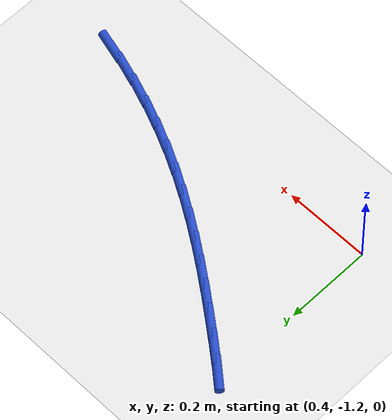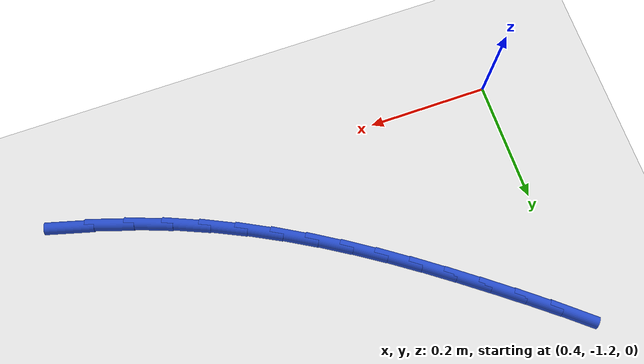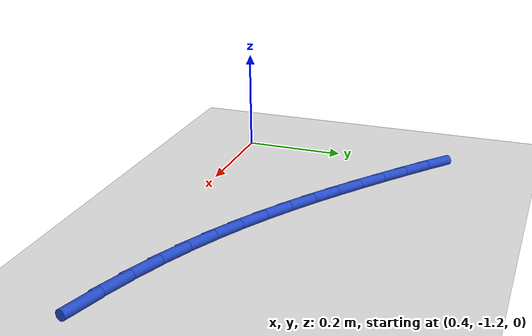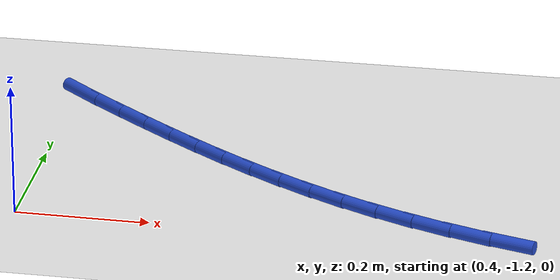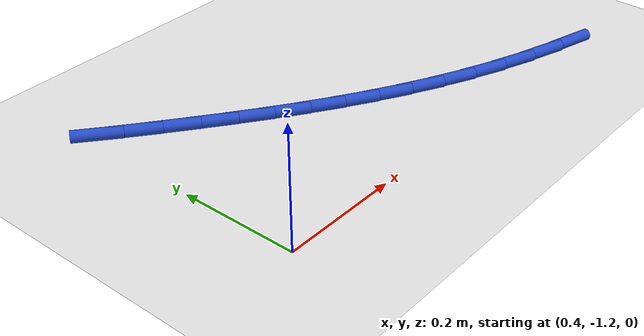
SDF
<sdf version="1.6">
 <world name="default">
  <model name="ground_plane">
   <static>1</static>
   <link name="link">
    <collision name="collision">
     <geometry><plane><normal>0 0 1</normal><size>100 100</size></plane></geometry>
     <surface><friction><ode><mu>100</mu><mu2>50</mu2></ode></friction></surface>
    </collision>
    <visual name="visual">
     <cast_shadows>0</cast_shadows>
     <geometry><plane><normal>0 0 1</normal><size>100 100</size></plane></geometry>
     <material>
      <script><uri>file://media/materials/scripts/gazebo.material</uri><name>Gazebo/WhiteGlow</name></script>
     </material>
    </visual>
   </link>
  </model>
  <model name="line">
   <link name="link_90">
    <pose>1.1222898866823372 -1.1924894793319176 0.01 0 1.57 -0.2703629640070567</pose>
    <collision name="collision">
     <geometry><cylinder><radius>0.01</radius><length>0.08</length></cylinder></geometry>
    </collision>
    <visual name="visual">
     <material>
      <script><name>Gazebo/Blue</name><uri>file://media/materials/scripts/gazebo.material</uri></script>
     </material>
     <geometry><cylinder><radius>0.01</radius><length>0.08</length></cylinder></geometry>
    </visual>
   </link>
   <link name="link_91">
    <pose>1.0600279932285928 -1.1752336615333652 0.01 0 1.57 -0.3158506569819308</pose>
    <collision name="collision">
     <geometry><cylinder><radius>0.01</radius><length>0.08</length></cylinder></geometry>
    </collision>
    <visual name="visual">
     <material>
      <script><name>Gazebo/Blue</name><uri>file://media/materials/scripts/gazebo.material</uri></script>
     </material>
     <geometry><cylinder><radius>0.01</radius><length>0.08</length></cylinder></geometry>
    </visual>
   </link>
   <link name="link_92">
    <pose>1.00040187743423 -1.1557484024380515 0.01 0 1.57 -0.36117264954080036</pose>
    <collision name="collision">
     <geometry><cylinder><radius>0.01</radius><length>0.08</length></cylinder></geometry>
    </collision>
    <visual name="visual">
     <material>
      <script><name>Gazebo/Blue</name><uri>file://media/materials/scripts/gazebo.material</uri></script>
     </material>
     <geometry><cylinder><radius>0.01</radius><length>0.08</length></cylinder></geometry>
    </visual>
   </link>
   <link name="link_93">
    <pose>0.9433966160611621 -1.13421510771858 0.01 0 1.57 -0.4054209004289169</pose>
    <collision name="collision">
     <geometry><cylinder><radius>0.01</radius><length>0.08</length></cylinder></geometry>
    </collision>
    <visual name="visual">
     <material>
      <script><name>Gazebo/Blue</name><uri>file://media/materials/scripts/gazebo.material</uri></script>
     </material>
     <geometry><cylinder><radius>0.01</radius><length>0.08</length></cylinder></geometry>
    </visual>
   </link>
   <link name="link_94">
    <pose>0.8887390739916196 -1.1107562071343913 0.01 0 1.57 -0.4478621539719772</pose>
    <collision name="collision">
     <geometry><cylinder><radius>0.01</radius><length>0.08</length></cylinder></geometry>
    </collision>
    <visual name="visual">
     <material>
      <script><name>Gazebo/Blue</name><uri>file://media/materials/scripts/gazebo.material</uri></script>
     </material>
     <geometry><cylinder><radius>0.01</radius><length>0.08</length></cylinder></geometry>
    </visual>
   </link>
   <link name="link_95">
    <pose>0.8361556599601158 -1.0854940262602202 0.01 0 1.57 -0.48779217084773113</pose>
    <collision name="collision">
     <geometry><cylinder><radius>0.01</radius><length>0.08</length></cylinder></geometry>
    </collision>
    <visual name="visual">
     <material>
      <script><name>Gazebo/Blue</name><uri>file://media/materials/scripts/gazebo.material</uri></script>
     </material>
     <geometry><cylinder><radius>0.01</radius><length>0.08</length></cylinder></geometry>
    </visual>
   </link>
   <link name="link_96">
    <pose>0.7853727827011655 -1.0585508906708037 0.01 0 1.57 -0.5245702846722793</pose>
    <collision name="collision">
     <geometry><cylinder><radius>0.01</radius><length>0.08</length></cylinder></geometry>
    </collision>
    <visual name="visual">
     <material>
      <script><name>Gazebo/Blue</name><uri>file://media/materials/scripts/gazebo.material</uri></script>
     </material>
     <geometry><cylinder><radius>0.01</radius><length>0.08</length></cylinder></geometry>
    </visual>
   </link>
   <link name="link_97">
    <pose>0.7361168509492843 -1.0300491259408782 0.01 0 1.57 -0.557646850303889</pose>
    <collision name="collision">
     <geometry><cylinder><radius>0.01</radius><length>0.08</length></cylinder></geometry>
    </collision>
    <visual name="visual">
     <material>
      <script><name>Gazebo/Blue</name><uri>file://media/materials/scripts/gazebo.material</uri></script>
     </material>
     <geometry><cylinder><radius>0.01</radius><length>0.08</length></cylinder></geometry>
    </visual>
   </link>
   <link name="link_98">
    <pose>0.6881142734389865 -1.0001110576451793 0.01 0 1.57 -0.5865805550802633</pose>
    <collision name="collision">
     <geometry><cylinder><radius>0.01</radius><length>0.08</length></cylinder></geometry>
    </collision>
    <visual name="visual">
     <material>
      <script><name>Gazebo/Blue</name><uri>file://media/materials/scripts/gazebo.material</uri></script>
     </material>
     <geometry><cylinder><radius>0.01</radius><length>0.08</length></cylinder></geometry>
    </visual>
   </link>
   <link name="link_99">
    <pose>0.6410914589047866 -0.9688590113584434 0.01 0 1.57 -0.6110453850752768</pose>
    <collision name="collision">
     <geometry><cylinder><radius>0.01</radius><length>0.08</length></cylinder></geometry>
    </collision>
    <visual name="visual">
     <material>
      <script><name>Gazebo/Blue</name><uri>file://media/materials/scripts/gazebo.material</uri></script>
     </material>
     <geometry><cylinder><radius>0.01</radius><length>0.08</length></cylinder></geometry>
    </visual>
   </link>
   <link name="link_100">
    <pose>0.5947748160811993 -0.9364153126554066 0.01 0 1.57 -0.6308287929886134</pose>
    <collision name="collision">
     <geometry><cylinder><radius>0.01</radius><length>0.08</length></cylinder></geometry>
    </collision>
    <visual name="visual">
     <material>
      <script><name>Gazebo/Blue</name><uri>file://media/materials/scripts/gazebo.material</uri></script>
     </material>
     <geometry><cylinder><radius>0.01</radius><length>0.08</length></cylinder></geometry>
    </visual>
   </link>
   <link name="link_101">
    <pose>0.5488907537027401 -0.9029022871108057 0.01 0 1.57 -0.6458236097956939</pose>
    <collision name="collision">
     <geometry><cylinder><radius>0.01</radius><length>0.08</length></cylinder></geometry>
    </collision>
    <visual name="visual">
     <material>
      <script><name>Gazebo/Blue</name><uri>file://media/materials/scripts/gazebo.material</uri></script>
     </material>
     <geometry><cylinder><radius>0.01</radius><length>0.08</length></cylinder></geometry>
    </visual>
   </link>
   <link name="link_102">
    <pose>0.5031656805039232 -0.8684422602993763 0.01 0 1.57 -0.6575192116311187</pose>
    <collision name="collision">
     <geometry><cylinder><radius>0.01</radius><length>0.08</length></cylinder></geometry>
    </collision>
    <visual name="visual">
     <material>
      <script><name>Gazebo/Blue</name><uri>file://media/materials/scripts/gazebo.material</uri></script>
     </material>
     <geometry><cylinder><radius>0.01</radius><length>0.08</length></cylinder></geometry>
    </visual>
   </link>
   <link name="link_103">
    <pose>0.45741813186604124 -0.8331188633842032 0.01 0 1.57 -0.6733400606186839</pose>
    <collision name="collision">
     <geometry><cylinder><radius>0.01</radius><length>0.08</length></cylinder></geometry>
    </collision>
    <visual name="visual">
     <material>
      <script><name>Gazebo/Blue</name><uri>file://media/materials/scripts/gazebo.material</uri></script>
     </material>
     <geometry><cylinder><radius>0.01</radius><length>0.08</length></cylinder></geometry>
    </visual>
   </link>
   <link name="link_104">
    <pose>0.41192044445323367 -0.7968251249800211 0.01 0 1.57 -0.6956104185726509</pose>
    <collision name="collision">
     <geometry><cylinder><radius>0.01</radius><length>0.08</length></cylinder></geometry>
    </collision>
    <visual name="visual">
     <material>
      <script><name>Gazebo/Blue</name><uri>file://media/materials/scripts/gazebo.material</uri></script>
     </material>
     <geometry><cylinder><radius>0.01</radius><length>0.08</length></cylinder></geometry>
    </visual>
   </link>
  </model>
 </world>
</sdf>
